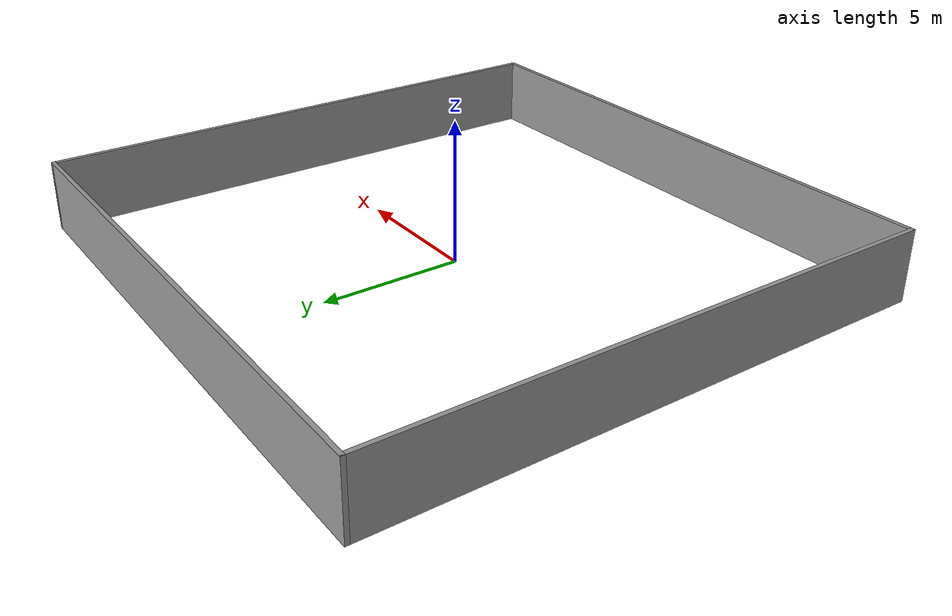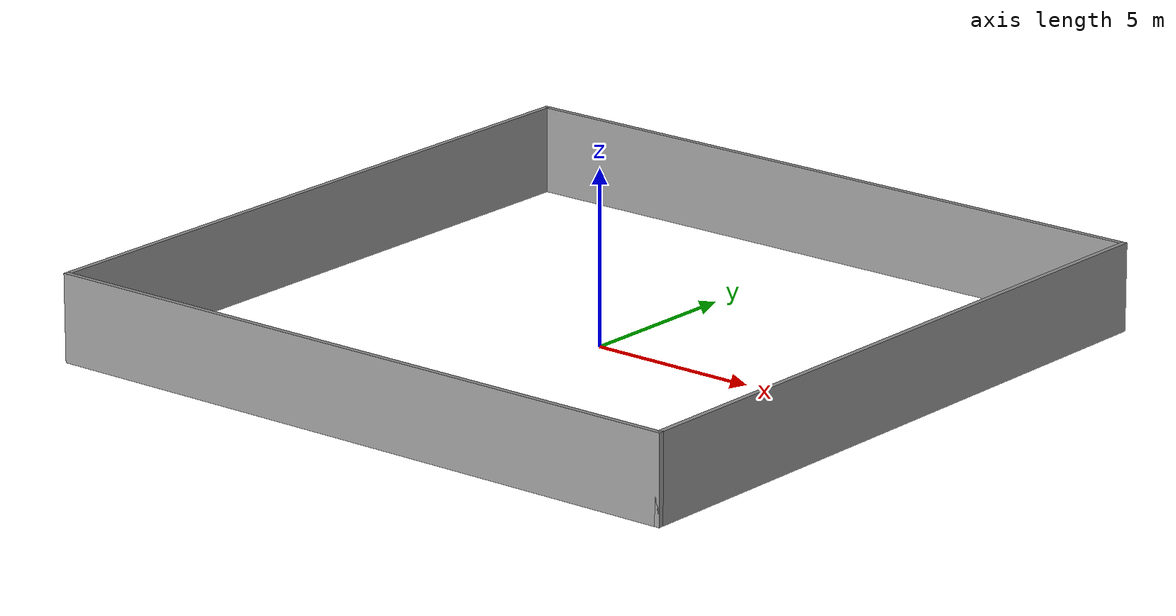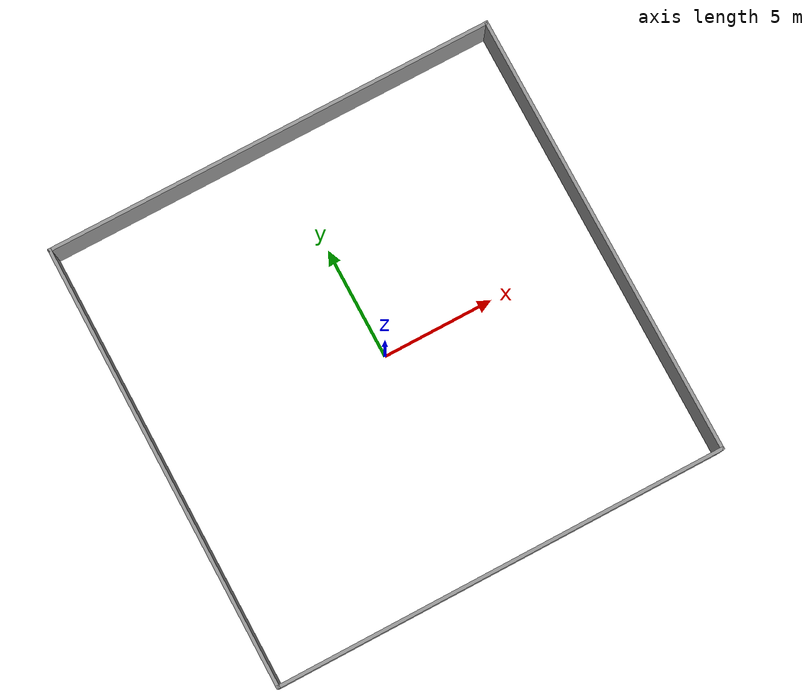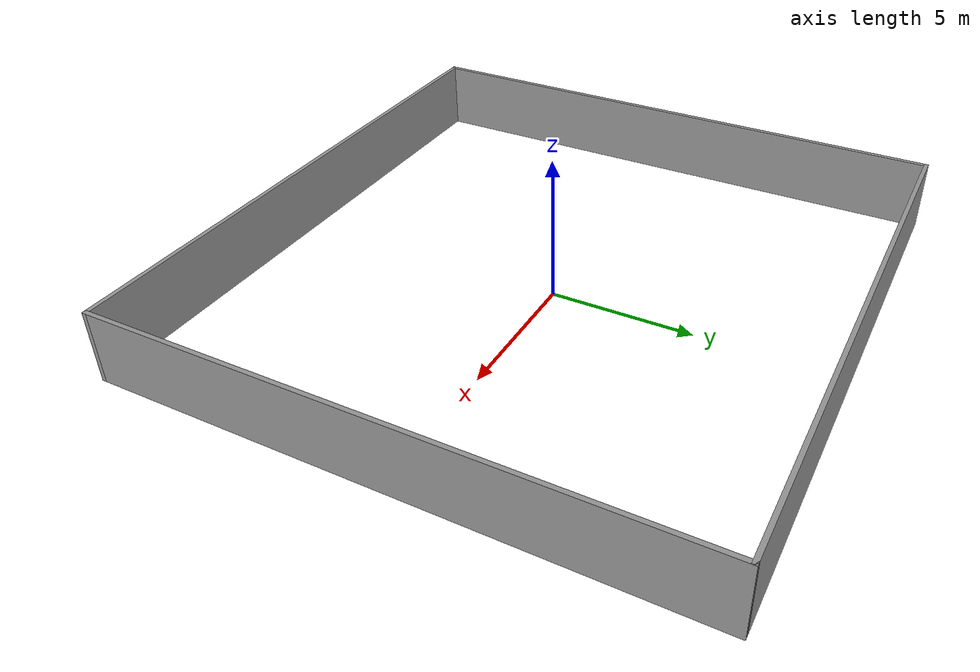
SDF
<?xml version='1.0'?>
<sdf version='1.6'>
  <model name='box'>
    <pose frame=''>-0.032197 0.009457 0 0 -0 0</pose>
    <link name='Wall_40'>
      <collision name='Wall_40_Collision'>
        <geometry>
          <box>
            <size>0.16 0.15 2.5</size>
          </box>
        </geometry>
        <pose frame=''>0 0 1.25 0 -0 0</pose>
      </collision>
      <visual name='Wall_40_Visual'>
        <pose frame=''>0 0 1.25 0 -0 0</pose>
        <geometry>
          <box>
            <size>0.16 0.15 2.5</size>
          </box>
        </geometry>
        <material>
          <script>
            <uri>file://media/materials/scripts/gazebo.material</uri>
            <name>Gazebo/Grey</name>
          </script>
          <ambient>1 1 1 1</ambient>
        </material>
        <meta>
          <layer>0</layer>
        </meta>
      </visual>
      <pose frame=''>10.045 9.925 0 0 -0 0</pose>
    </link>
    <link name='Wall_41'>
      <collision name='Wall_41_Collision'>
        <geometry>
          <box>
            <size>20.25 0.15 2.5</size>
          </box>
        </geometry>
        <pose frame=''>0 0 1.25 0 -0 0</pose>
      </collision>
      <visual name='Wall_41_Visual'>
        <pose frame=''>0 0 1.25 0 -0 0</pose>
        <geometry>
          <box>
            <size>20.25 0.15 2.5</size>
          </box>
        </geometry>
        <material>
          <script>
            <uri>file://media/materials/scripts/gazebo.material</uri>
            <name>Gazebo/Grey</name>
          </script>
          <ambient>1 1 1 1</ambient>
        </material>
        <meta>
          <layer>0</layer>
        </meta>
      </visual>
      <pose frame=''>0 9.925 0 0 -0 3.14159</pose>
    </link>
    <link name='Wall_42'>
      <collision name='Wall_42_Collision'>
        <geometry>
          <box>
            <size>20 0.15 2.5</size>
          </box>
        </geometry>
        <pose frame=''>0 0 1.25 0 -0 0</pose>
      </collision>
      <visual name='Wall_42_Visual'>
        <pose frame=''>0 0 1.25 0 -0 0</pose>
        <geometry>
          <box>
            <size>20 0.15 2.5</size>
          </box>
        </geometry>
        <material>
          <script>
            <uri>file://media/materials/scripts/gazebo.material</uri>
            <name>Gazebo/Grey</name>
          </script>
          <ambient>1 1 1 1</ambient>
        </material>
        <meta>
          <layer>0</layer>
        </meta>
      </visual>
      <pose frame=''>-10.05 0 0 0 -0 -1.5708</pose>
    </link>
    <link name='Wall_43'>
      <collision name='Wall_43_Collision'>
        <geometry>
          <box>
            <size>20.25 0.15 2.5</size>
          </box>
        </geometry>
        <pose frame=''>0 0 1.25 0 -0 0</pose>
      </collision>
      <visual name='Wall_43_Visual'>
        <pose frame=''>0 0 1.25 0 -0 0</pose>
        <geometry>
          <box>
            <size>20.25 0.15 2.5</size>
          </box>
        </geometry>
        <material>
          <script>
            <uri>file://media/materials/scripts/gazebo.material</uri>
            <name>Gazebo/Grey</name>
          </script>
          <ambient>1 1 1 1</ambient>
        </material>
        <meta>
          <layer>0</layer>
        </meta>
      </visual>
      <pose frame=''>0 -9.925 0 0 -0 0</pose>
    </link>
    <link name='Wall_46'>
      <collision name='Wall_46_Collision'>
        <geometry>
          <box>
            <size>20 0.15 2.5</size>
          </box>
        </geometry>
        <pose frame=''>0 0 1.25 0 -0 0</pose>
      </collision>
      <visual name='Wall_46_Visual'>
        <pose frame=''>0 0 1.25 0 -0 0</pose>
        <geometry>
          <box>
            <size>20 0.15 2.5</size>
          </box>
        </geometry>
        <material>
          <script>
            <uri>file://media/materials/scripts/gazebo.material</uri>
            <name>Gazebo/Grey</name>
          </script>
          <ambient>1 1 1 1</ambient>
        </material>
        <meta>
          <layer>0</layer>
        </meta>
      </visual>
      <pose frame=''>10.05 0 0 0 -0 -1.5708</pose>
    </link>
    <static>1</static>
  </model>
</sdf>
